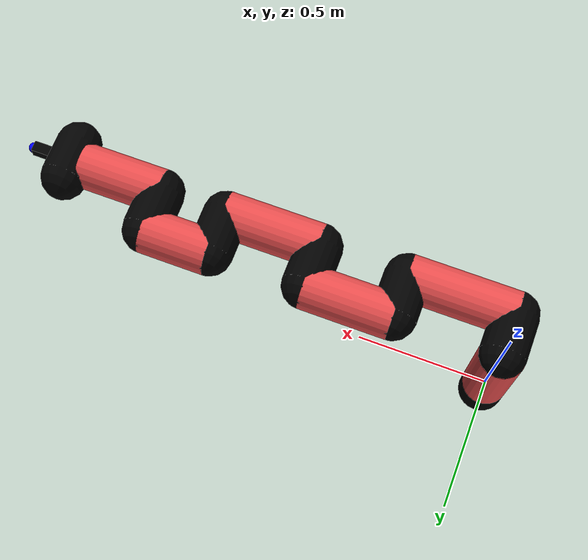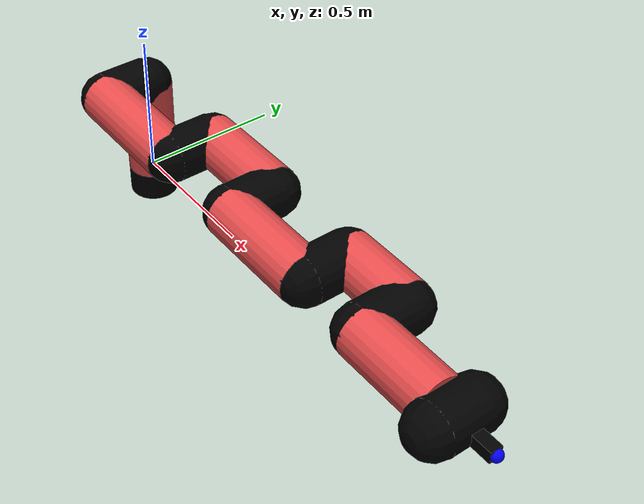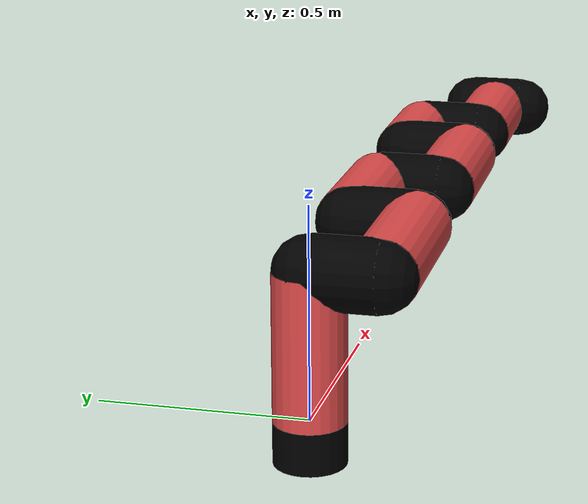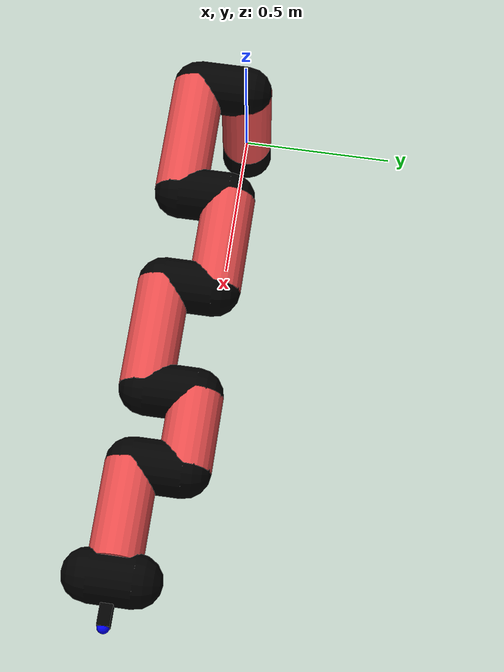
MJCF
<mujoco model="manipulator">
		<compiler angle="degree" coordinate="local" inertiafromgeom="auto" meshdir="meshes/"/>
		<option gravity="0 0 0" integrator="RK4" iterations="30" timestep="0.01"/>

		<default>
		<joint armature="1" limited="true" stiffness="10" damping="15" frictionloss="5.0"/>
		<geom conaffinity="1" condim="3" contype="1" friction=".5 .1 .1" margin="0.002"/>
		<motor ctrllimited="true"/>
		<position ctrllimited="true"/>
		</default>

		<asset>
		<texture builtin="gradient" height="100" rgb1="1.0 1.0 1.0" rgb2="1.0 1.0 1.0" type="skybox" width="100"/>
		<texture builtin="flat" height="32" name="arm_tex" rgb1="0.9 0.3 0.3" type="2d" width="32"/>
		<texture builtin="flat" height="32" name="gripper_tex" rgb1="0.0 0.0 0.0" type="cube" width="32"/>

		<material name="arm_mat" shininess="0.1" specular="0.1" texture="arm_tex"/>
		<material name="gripper_mat" shininess="1" specular="1" texture="gripper_tex"/>
		</asset>

		<worldbody>
		<light cutoff="45" diffuse=".8 .8 .8" dir="0 0.16 -1" directional="false" name="light" pos="0 -2.0 8.0" specular="0.3 0.3 0.3"/>

		<body name="base_link" pos="0 0 -0.1">
		<geom fromto="0 0 0 0 0 0.1" material="arm_mat" name="base_link" rgba="0.0 0.0 0.0 1" size="0.085" type="cylinder"/>
		</body>

		<body name="l1" pos="0 0 0">
<geom fromto="0 0 0 0 0 0.35" material="arm_mat" name="l1" rgba="0.9 0.3 0.3 1" size="0.085" type="cylinder"/>
<geom fromto="0 0 0.35 0 -0.16 0.35" material="arm_mat" name="l1_ex" rgba="0.0 0.0 0.0 1" size="0.085" type="capsule"/>
<joint axis="0 0 1" name="j1" pos="0 0 0" range="-90 90" damping="25.84" frictionloss="7.52"/>

<body name="l2" pos="0 -0.16 0.35">
<geom fromto="0 0 0 0.4 0 0" material="arm_mat" name="l2" rgba="0.9 0.3 0.3 1" size="0.085" type="cylinder"/>
<geom fromto="0.4 0 0 0.4 0.16 0" material="arm_mat" name="l2_ex" rgba="0.0 0.0 0.0 1" size="0.085" type="capsule"/>
<joint axis="0.0 1.0 0.0" name="j2" pos="0 0 0" range="-90 60" damping="28.9" frictionloss="8.76"/>

<body name="l3" pos="0.4 0.16 0">
<geom fromto="0 0 0 0.33 0 0" material="arm_mat" name="l3" rgba="0.9 0.3 0.3 1" size="0.085" type="cylinder"/>
<geom fromto="0.33 0 0 0.33 -0.16 0" material="arm_mat" name="l3_ex" rgba="0.0 0.0 0.0 1" size="0.085" type="capsule"/>
<joint axis="0.0 1.0 0.0" name="j3" pos="0 0 0" range="-30 60" damping="30.07" frictionloss="9.37"/>

<body name="l4" pos="0.33 -0.16 0">
<geom fromto="0 0 0 0.36 0 0" material="arm_mat" name="l4" rgba="0.9 0.3 0.3 1" size="0.085" type="cylinder"/>
<geom fromto="0.36 0 0 0.36 0.16 0" material="arm_mat" name="l4_ex" rgba="0.0 0.0 0.0 1" size="0.085" type="capsule"/>
<joint axis="0.0 1.0 0.0" name="j4" pos="0 0 0" range="-30 60" damping="35.48" frictionloss="7.76"/>

<body name="l5" pos="0.36 0.16 0">
<geom fromto="0 0 0 0.25 0 0" material="arm_mat" name="l5" rgba="0.9 0.3 0.3 1" size="0.085" type="cylinder"/>
<geom fromto="0.25 0 0 0.25 -0.16 0" material="arm_mat" name="l5_ex" rgba="0.0 0.0 0.0 1" size="0.085" type="capsule"/>
<joint axis="0.0 1.0 0.0" name="j5" pos="0 0 0" range="-30 60" damping="25.94" frictionloss="9.9"/>

<body name="l6" pos="0.25 -0.16 0">
<geom fromto="0 0 0 0.31 0 0" material="arm_mat" name="l6" rgba="0.9 0.3 0.3 1" size="0.085" type="cylinder"/>
<joint axis="0.0 1.0 0.0" name="j6" pos="0 0 0" range="-30 60" damping="24.14" frictionloss="12.4"/>

<body name="gripper" pos="0.31 0 0">
<geom fromto="0.05 -0.07 0 0.05 0.07 0" material="gripper_mat" name="gripper" rgba="0.0 0.0 0.0 1" size="0.085" type="capsule"/><joint axis="1 0 0" name="j7" pos="0 0 0" range="-90 90" damping="15" frictionloss="5.0"/><body name="finger" pos="0.1 0 0">
<geom fromto="0 0.0 0 0.1 0.0 0" material="gripper_mat" name="finger" rgba="0.0 0.0 0.0 1" size="0.020 0.06 0.06" type="box"/>
</body>
<site name="current" pos="0.2 0. 0.0" rgba="0. 0. 1.0 1" size="0.02" type="sphere"/>
</body>
</body>
</body>
</body>
</body>
</body>
</body>
</worldbody>
<actuator>
<motor ctrllimited="true" ctrlrange="-1.0 1.0" joint="j1" gear="97.38"/>
<motor ctrllimited="true" ctrlrange="-1.0 1.0" joint="j2" gear="65.6"/>
<motor ctrllimited="true" ctrlrange="-1.0 1.0" joint="j3" gear="73.74"/>
<motor ctrllimited="true" ctrlrange="-1.0 1.0" joint="j4" gear="93.62"/>
<motor ctrllimited="true" ctrlrange="-1.0 1.0" joint="j5" gear="84.87"/>
<motor ctrllimited="true" ctrlrange="-1.0 1.0" joint="j6" gear="90.44"/>
<motor ctrllimited="true" ctrlrange="-1.0 1.0" joint="j7" gear="80"/>
</actuator>
</mujoco>
